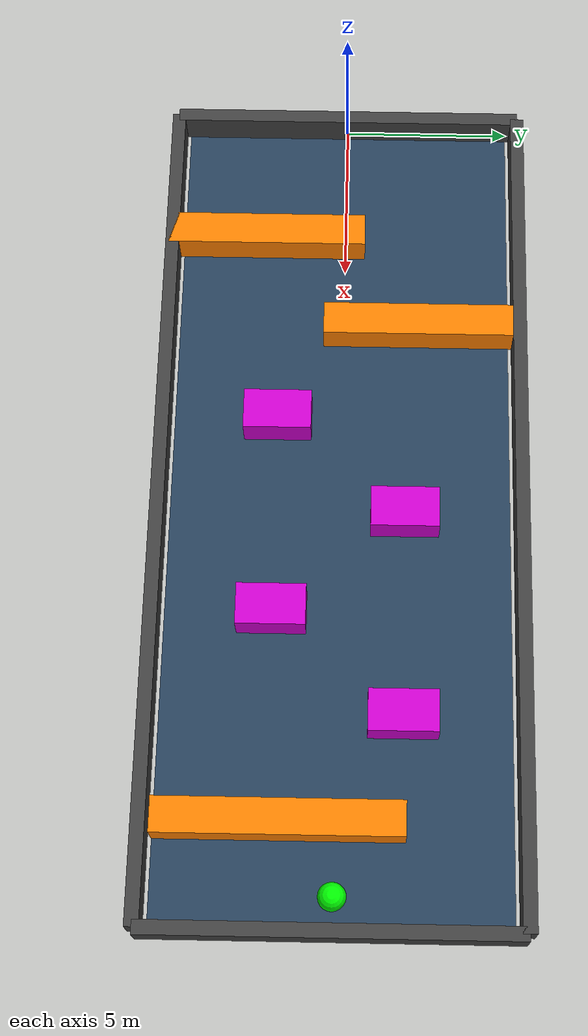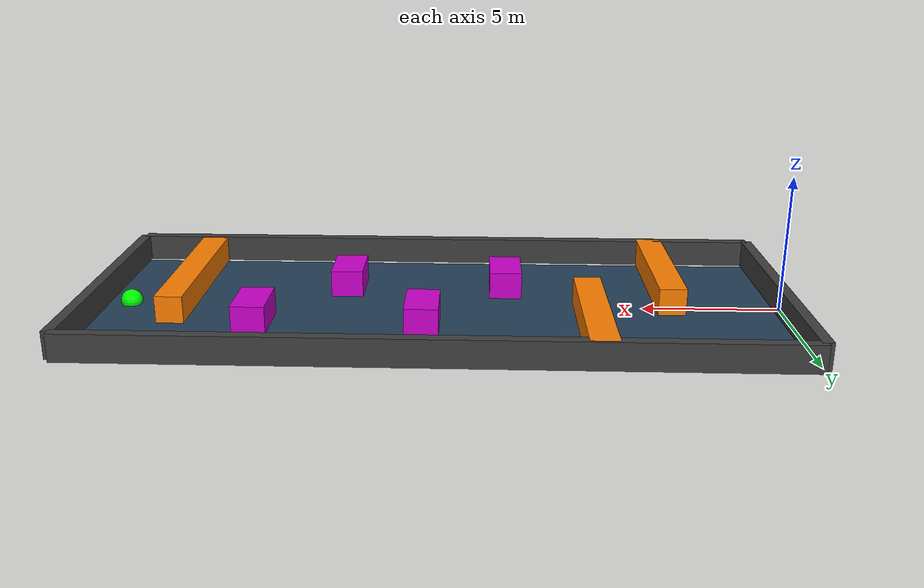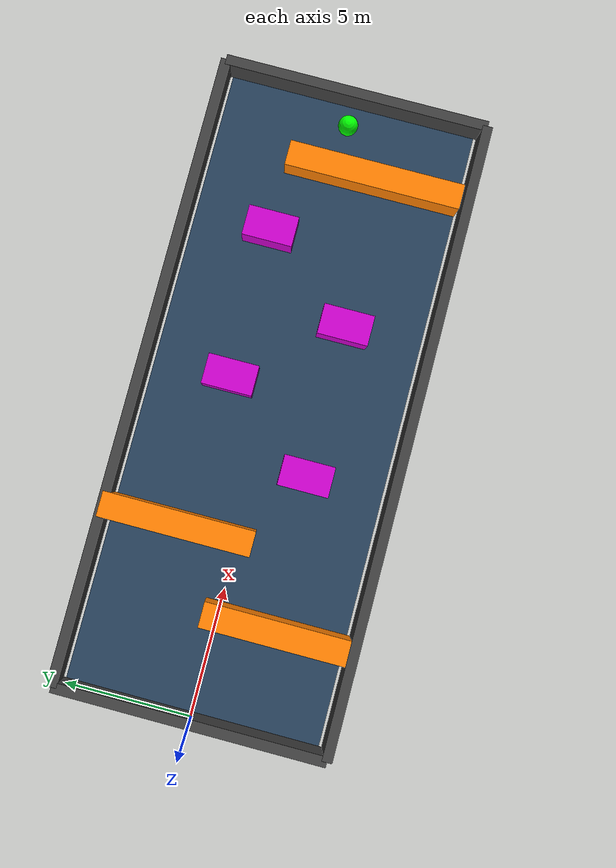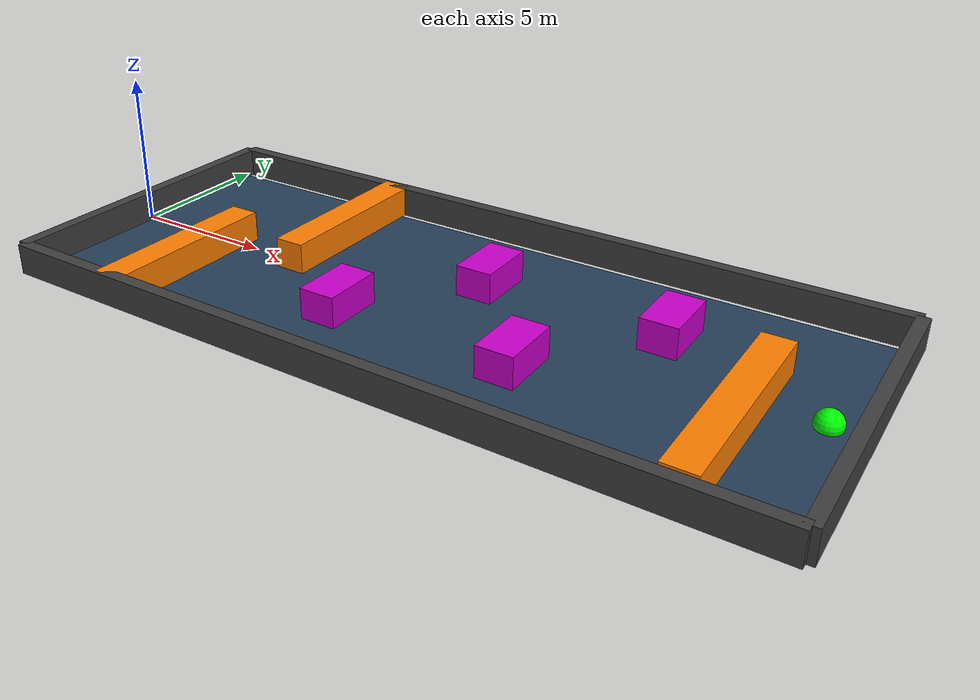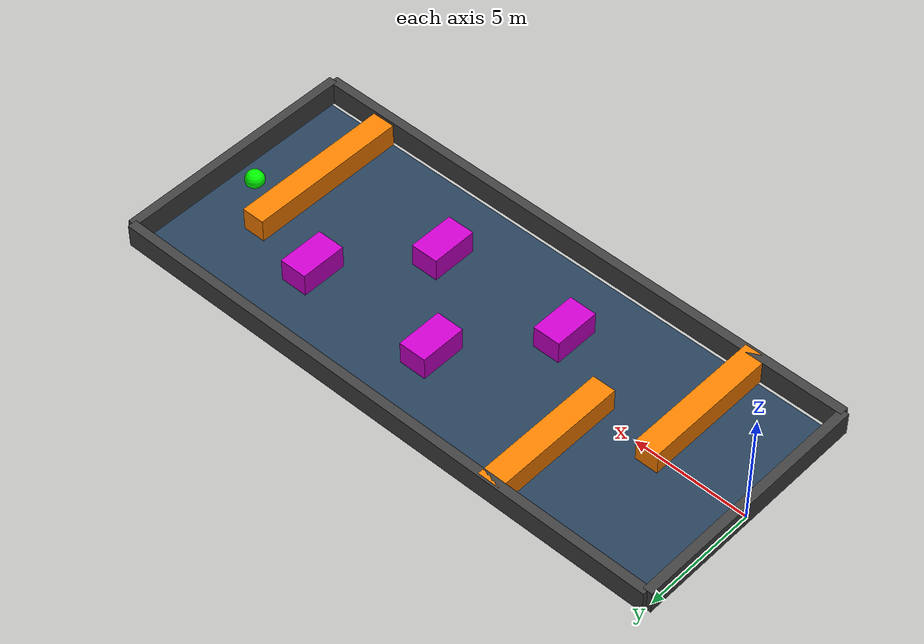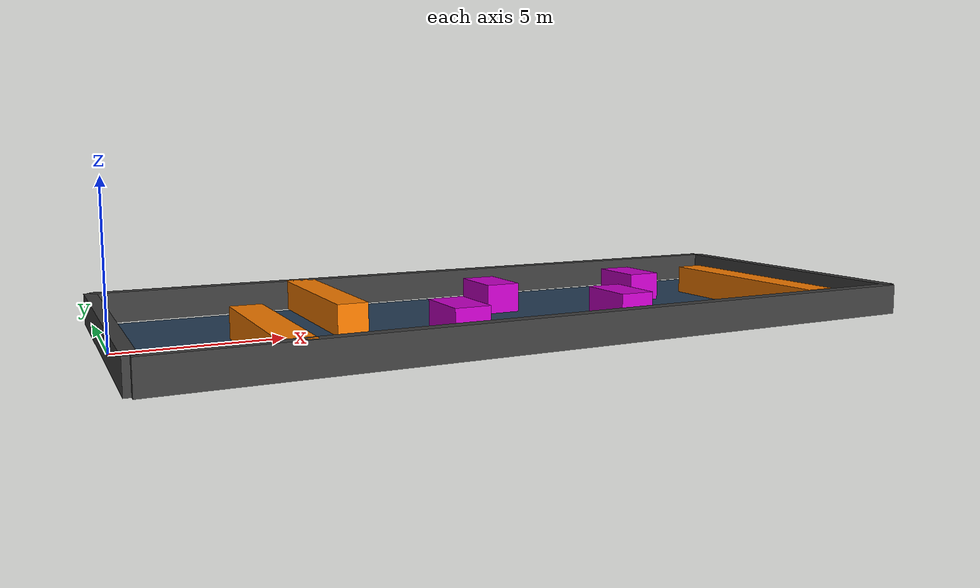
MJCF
<mujoco model="Empty_Corridor3_25m">

  <!-- COMPILER + OPTION -->
  <compiler angle="radian" coordinate="local" autolimits="true"/>
  <option timestep="0.01" cone="elliptic" integrator="RK4" gravity="0 0 -9.81"/>

  <!-- VISUAL STYLE (bunker style) -->
  <visual>
    <headlight diffuse="0.6 0.6 0.6"
               ambient="0.1 0.1 0.1"
               specular="0 0 0"/>

    <rgba haze="0.15 0.25 0.35 1"/>

    <global azimuth="135"
            elevation="-28"/>
  </visual>

  <!-- ASSETS (ground texture style giống bunker) -->
  <asset>
    <texture type="skybox"
             builtin="gradient"
             rgb1="0.3 0.5 0.7"
             rgb2="0 0 0"
             width="512"
             height="3072"/>

    <texture type="2d"
             name="groundplane"
             builtin="checker"
             mark="edge"
             rgb1="0.2 0.3 0.4"
             rgb2="0.1 0.2 0.3"
             markrgb="0.8 0.8 0.8"
             width="300"
             height="300"/>

    <material name="groundplane"
              texture="groundplane"
              texuniform="true"
              texrepeat="5 5"
              reflectance="0.2"/>
  </asset>

  <!-- WORLD -->
  <worldbody>

    <!-- LIGHT -->
    <light name="spotlight"
           pos="0 0 100"
           mode="targetbodycom"
           target="goal"
           castshadow="false"/>

    <!-- FLOOR (giữ nguyên nhưng đổi style bunker) -->
    <geom name="floor"
          type="plane"
          pos="12.5 0 0"
          size="12.5 5 0.05"
          material="groundplane"
          conaffinity="1"
          condim="3"/>

        <!-- WALLS -->
        <geom type="box" pos="12.5 5.3 0.5" size="12.5 0.2 0.5" rgba="0.25 0.25 0.25 1"/>
        <geom type="box" pos="12.5 -5.3 0.5" size="12.5 0.2 0.5" rgba="0.25 0.25 0.25 1"/>
        <geom type="box" pos="0 0 0.5" size="0.2 5.3 0.5" rgba="0.25 0.25 0.25 1"/>
        <geom type="box" pos="25 0 0.5" size="0.2 5.3 0.5" rgba="0.25 0.25 0.25 1"/>

        <!-- ZIGZAG ZONE (MOVED TO FRONT) -->
        <geom type="box" pos="4 -2.4 0.5" size="0.5 3 0.5" rgba="1 0.5 0 1"/>
        <geom type="box" pos="7  2.4 0.5" size="0.5 3 0.5" rgba="1 0.5 0 1"/>

        <!-- MID ZONE (unchanged density, slight shuffle) -->

        <geom type="box" pos="10 -1.9 0.5" size="0.6 1 0.5" rgba="0.8 0 0.8 1"/>
        <geom type="box" pos="13  1.9 0.5" size="0.6 1 0.5" rgba="0.8 0 0.8 1"/>
        <geom type="box" pos="16 -1.9 0.5" size="0.6 1 0.5" rgba="0.8 0 0.8 1"/>
        <geom type="box" pos="19  1.9 0.5" size="0.6 1 0.5" rgba="0.8 0 0.8 1"/>

        <!-- FINAL ZONE (BOTTLENECK REMAINS HERE) -->

        <geom type="box" pos="22 -1.5 0.5" size="0.5 3.5 0.5" rgba="1 0.5 0 1"/>

        <!-- GOAL -->
        <body name="goal" pos="24 0 0.1" mocap="true">
            <site name="goal_site" type="sphere" size="0.4" rgba="0 1 0 1"/>
        </body>

    </worldbody>
</mujoco>
